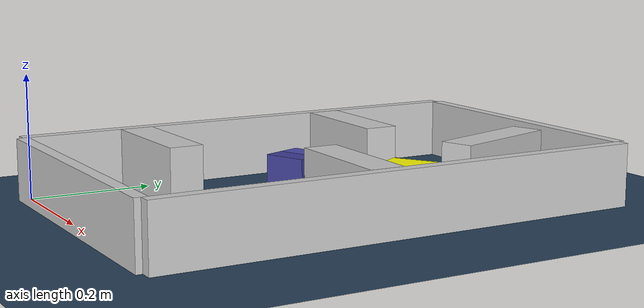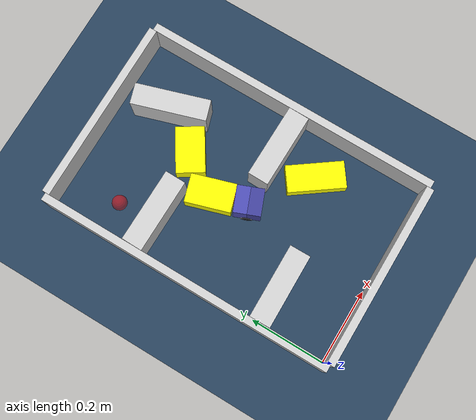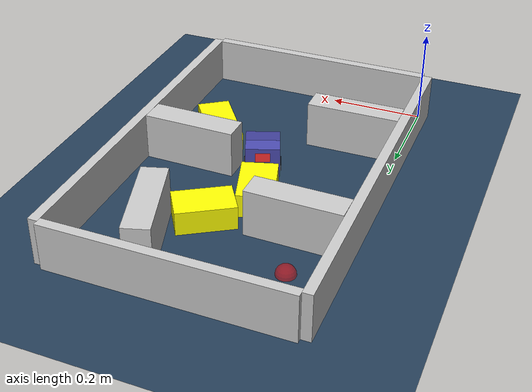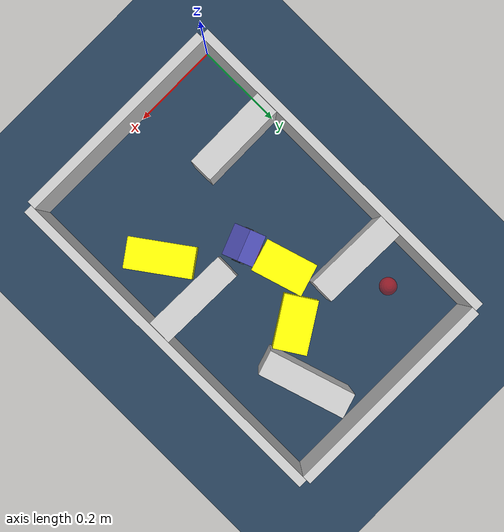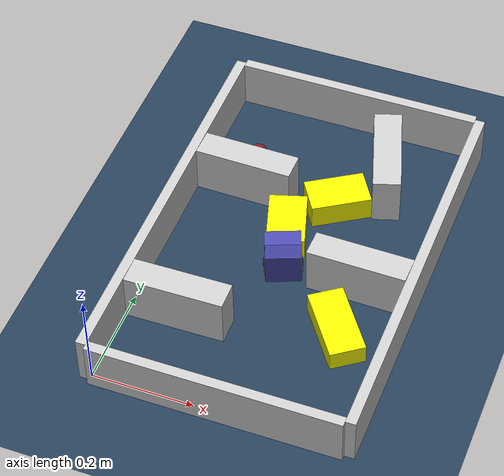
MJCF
<?xml version='1.0' encoding='utf-8'?>
<mujoco model="real_buildable">
  <compiler angle="degree" />
  <option timestep="0.002" integrator="implicitfast" iterations="100" cone="elliptic" />
  <default>
    <geom density="1" />
  </default>
  <asset>
    <texture builtin="gradient" height="3072" rgb1="0.3 0.5 0.7" rgb2="0 0 0" type="skybox" width="512" />
    <texture builtin="checker" height="300" mark="edge" markrgb="0.8 0.8 0.8" name="groundplane" rgb1="0.2 0.3 0.4" rgb2="0.1 0.2 0.3" type="2d" width="300" />
    <material name="groundplane" reflectance="0.2" texrepeat="5 5" texture="groundplane" texuniform="true" />
  </asset>
  <worldbody>
    <light dir="0 0 -1" directional="true" pos="0 0 1.5" />
    <geom name="floor" type="plane" condim="4" friction="0.5 0.005 0.001" material="groundplane" size="0 0 0.05" />
    <body name="walls">
      <geom name="wall_boundary_left" type="box" condim="4" friction="1.0 0.005 0.0001" rgba="0.8 0.8 0.8 1" pos="-0.010000 0.387500 0.050000" euler="0 0 0.000000" size="0.010000 0.397500 0.050000" />
      <geom name="wall_boundary_right" type="box" condim="4" friction="1.0 0.005 0.0001" rgba="0.8 0.8 0.8 1" pos="0.500000 0.387500 0.050000" euler="0 0 0.000000" size="0.010000 0.397500 0.050000" />
      <geom name="wall_boundary_bottom" type="box" condim="4" friction="1.0 0.005 0.0001" rgba="0.8 0.8 0.8 1" pos="0.245000 -0.010000 0.050000" euler="0 0 0.000000" size="0.245000 0.010000 0.050000" />
      <geom name="wall_boundary_top" type="box" condim="4" friction="1.0 0.005 0.0001" rgba="0.8 0.8 0.8 1" pos="0.245000 0.785000 0.050000" euler="0 0 0.000000" size="0.245000 0.010000 0.050000" />
      <geom name="wall_inner_1" type="box" condim="4" friction="1.0 0.005 0.0001" rgba="0.8 0.8 0.8 1" pos="0.097808 0.183074 0.050000" euler="0 0 0.654098" size="0.097500 0.027500 0.050000" />
      <geom name="wall_inner_2" type="box" condim="4" friction="1.0 0.005 0.0001" rgba="0.8 0.8 0.8 1" pos="0.392076 0.360205 0.050000" euler="0 0 -0.908587" size="0.097500 0.027500 0.050000" />
      <geom name="wall_inner_3" type="box" condim="4" friction="1.0 0.005 0.0001" rgba="0.8 0.8 0.8 1" pos="0.098000 0.537000 0.050000" euler="0 0 179.100000" size="0.097500 0.027500 0.050000" />
      <geom name="wall_inner_4" type="box" condim="4" friction="1.0 0.005 0.0001" rgba="0.8 0.8 0.8 1" pos="0.351000 0.647000 0.050000" euler="0 0 107.500000" size="0.097500 0.027500 0.050000" />
    </body>
    <body name="car" pos="0.24038435297336505 0.35412841326698713 0.01" quat="0.56138343623688658 0 0 0.82755582139144279">
      <freejoint name="car_freejoint" />
      <inertial pos="0 0 0.0375" mass="0.35" diaginertia="0.000266 0.000266 0.000286" />
      <geom name="front_chassis_collision" type="box" pos="0.0175 0 0.0375" size="0.0175 0.035 0.0325" rgba="0.3 0.3 0.7 1" />
      <geom name="rear_chassis_collision" type="box" pos="-0.0175 0 0.0375" size="0.0175 0.035 0.0325" rgba="0.25 0.25 0.6 1" />
      <geom name="front_marker" type="box" pos="0.034 0 0.0505" size="0.002 0.015 0.01" rgba="1 0.2 0.2 1" contype="0" conaffinity="0" />
      <body name="rear_support_body" pos="-0.03 0 0.0025">
        <joint name="rear_caster_joint" type="ball" damping="0.0001" />
        <inertial pos="0 0 0" mass="0.025" diaginertia="0.000001 0.000001 0.000001" />
        <geom name="rear_support" type="sphere" pos="0 0 0" size="0.0025" friction="0 0 0" rgba="0.7 0.1 0.1 1" />
      </body>
      <body name="front_support_body" pos="0.03 0 0.0025">
        <joint name="front_caster_joint" type="ball" damping="0.0001" />
        <inertial pos="0 0 0" mass="0.025" diaginertia="0.000001 0.000001 0.000001" />
        <geom name="front_support" type="sphere" pos="0 0 0" size="0.0025" friction="0 0 0" rgba="0.1 0.7 0.1 1" />
      </body>
      <body name="left_wheel" pos="0 0.0375 0.015">
        <inertial pos="0 0 0" mass="0.05" diaginertia="0.000003 0.000006 0.000003" />
        <joint name="left_wheel_joint" type="hinge" axis="0 1 0" damping="0.01" armature="0.0001" />
        <geom name="left_wheel_collision" type="cylinder" size="0.015 0.0005" euler="90 0 0" rgba="0.1 0.1 0.1 1" />
      </body>
      <body name="right_wheel" pos="0 -0.0375 0.015">
        <inertial pos="0 0 0" mass="0.05" diaginertia="0.000003 0.000006 0.000003" />
        <joint name="right_wheel_joint" type="hinge" axis="0 1 0" damping="0.01" armature="0.0001" />
        <geom name="right_wheel_collision" type="cylinder" size="0.015 0.0005" euler="90 0 0" rgba="0.1 0.1 0.1 1" />
      </body>
    </body>
    <body name="obstacle_0_movable">
      <geom name="obstacle_0_movable" condim="4" pos="0.21341015539890718 0.44802005666165245 0.025000000000000001" friction="1 0.005 0.0001" rgba="1 1 0 1" size="0.037500 0.060000 0.025000" type="box" mass="0.1" quat="0.98892891634667279 0 0 0.14839002127298007" />
      <joint type="free" />
    </body>
    <body name="obstacle_1_movable">
      <geom name="obstacle_1_movable" condim="4" pos="0.28170693846663553 0.55039647399977631 0.025000000000000001" friction="1 0.005 0.0001" rgba="1 1 0 1" size="0.037500 0.060000 0.025000" type="box" mass="0.1" quat="0.87647137640952077 0 0 -0.4814539711486448" />
      <joint type="free" />
    </body>
    <body name="obstacle_2_movable">
      <geom name="obstacle_2_movable" condim="4" pos="0.38613199999999925 0.24498899999999965 0.02" friction="1 0.005 0.0001" rgba="1 1 0 1" size="0.035000 0.075000 0.020000" type="box" mass="0.1" quat="0.95180641351910933 0 0 0.30669944764197138" />
      <joint type="free" />
    </body>
    <site name="goal" type="sphere" pos="0.080000 0.640000 0.0" size="0.02" rgba="1 0 0 0.5" />
  </worldbody>
  <actuator>
    <velocity name="left_wheel_drive" joint="left_wheel_joint" ctrlrange="-25 25" kv="0.75" forcerange="-0.5 0.5" />
    <velocity name="right_wheel_drive" joint="right_wheel_joint" ctrlrange="-25 25" kv="0.75" forcerange="-0.5 0.5" />
  </actuator>
</mujoco>
